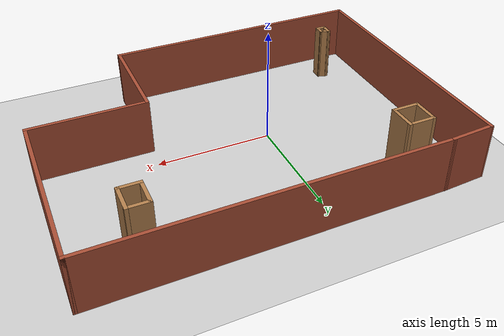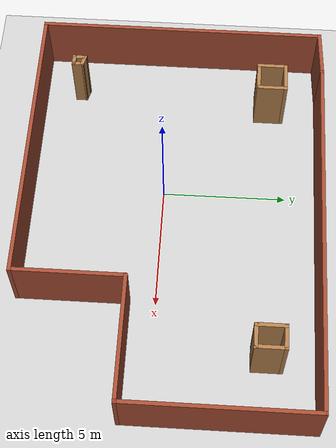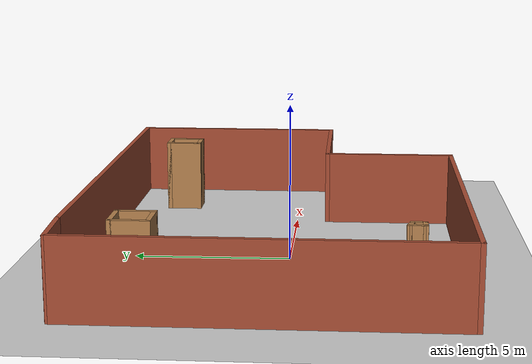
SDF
<sdf version="1.7">
 <world name="default">
  <light name="sun" type="directional">
   <pose>0 0 10 0 -0 0</pose>
   <diffuse>0.8 0.8 0.8 1</diffuse>
   <specular>0.2 0.2 0.2 1</specular>
   <attenuation>
    <range>1000</range>
    <constant>0.9</constant>
    <linear>0.01</linear>
    <quadratic>0.001</quadratic>
   </attenuation>
   <direction>-0.5 0.1 -0.9</direction>
   <spot><inner_angle>0</inner_angle><outer_angle>0</outer_angle><falloff>0</falloff></spot>
  </light>
  <model name="ground_plane">
   <static>1</static>
   <link name="link">
    <collision name="collision">
     <geometry><plane><normal>0 0 1</normal><size>100 100</size></plane></geometry>
     <surface><friction><ode><mu>100</mu><mu2>50</mu2></ode></friction></surface>
    </collision>
    <visual name="visual">
     <cast_shadows>0</cast_shadows>
     <geometry><plane><normal>0 0 1</normal><size>100 100</size></plane></geometry>
     <material>
      <script><uri>file://media/materials/scripts/gazebo.material</uri><name>Gazebo/Grey</name></script>
     </material>
    </visual>
   </link>
  </model>
  <gravity>0 0 -9.8</gravity>
  <magnetic_field>6e-06 2.3e-05 -4.2e-05</magnetic_field>
  <atmosphere type="adiabatic"/>
  <physics type="ode">
   <max_step_size>0.001</max_step_size>
   <real_time_factor>1</real_time_factor>
   <real_time_update_rate>1000</real_time_update_rate>
  </physics>
  <scene><ambient>0.4 0.4 0.4 1</ambient><background>0.7 0.7 0.7 1</background><shadows>1</shadows></scene>
  <spherical_coordinates>
   <surface_model>EARTH_WGS84</surface_model>
   <latitude_deg>0</latitude_deg>
   <longitude_deg>0</longitude_deg>
   <elevation>0</elevation>
   <heading_deg>0</heading_deg>
  </spherical_coordinates>
  <model name="tutorial_world">
   <pose>1.5769 0.43757 0 0 -0 0</pose>
   <link name="Wall_1">
    <collision name="Wall_1_Collision">
     <geometry><box><size>14.75 0.15 2.5</size></box></geometry>
     <pose>0 0 1.25 0 -0 0</pose>
    </collision>
    <visual name="Wall_1_Visual">
     <pose>0 0 1.25 0 -0 0</pose>
     <geometry><box><size>14.75 0.15 2.5</size></box></geometry>
     <material>
      <script><uri>file://media/materials/scripts/gazebo.material</uri><name>Gazebo/Bricks</name></script>
      <ambient>1 1 1 1</ambient>
     </material>
     <meta><layer>0</layer></meta>
    </visual>
    <pose>0.926969 5.84803 0 0 -0 0</pose>
   </link>
   <link name="Wall_11">
    <collision name="Wall_11_Collision">
     <geometry><box><size>0.5 0.15 2.5</size></box></geometry>
     <pose>0 0 1.25 0 -0 0</pose>
    </collision>
    <visual name="Wall_11_Visual">
     <pose>0 0 1.25 0 -0 0</pose>
     <geometry><box><size>0.5 0.15 2.5</size></box></geometry>
     <material>
      <script><uri>file://media/materials/scripts/gazebo.material</uri><name>Gazebo/Wood</name></script>
      <ambient>1 1 1 1</ambient>
     </material>
     <meta><layer>0</layer></meta>
    </visual>
    <pose>-6.37272 -4.46114 0 0 -0 0</pose>
   </link>
   <link name="Wall_12">
    <collision name="Wall_12_Collision">
     <geometry><box><size>0.5 0.15 2.5</size></box></geometry>
     <pose>0 0 1.25 0 -0 0</pose>
    </collision>
    <visual name="Wall_12_Visual">
     <pose>0 0 1.25 0 -0 0</pose>
     <geometry><box><size>0.5 0.15 2.5</size></box></geometry>
     <material>
      <script><uri>file://media/materials/scripts/gazebo.material</uri><name>Gazebo/Wood</name></script>
      <ambient>1 1 1 1</ambient>
     </material>
     <meta><layer>0</layer></meta>
    </visual>
    <pose>-6.19772 -4.28614 0 0 -0 1.5708</pose>
   </link>
   <link name="Wall_13">
    <collision name="Wall_13_Collision">
     <geometry><box><size>0.5 0.15 2.5</size></box></geometry>
     <pose>0 0 1.25 0 -0 0</pose>
    </collision>
    <visual name="Wall_13_Visual">
     <pose>0 0 1.25 0 -0 0</pose>
     <geometry><box><size>0.5 0.15 2.5</size></box></geometry>
     <material>
      <script><uri>file://media/materials/scripts/gazebo.material</uri><name>Gazebo/Wood</name></script>
      <ambient>1 1 1 1</ambient>
     </material>
     <meta><layer>0</layer></meta>
    </visual>
    <pose>-6.36676 -4.06585 0 0 -0 2.87979</pose>
   </link>
   <link name="Wall_14">
    <collision name="Wall_14_Collision">
     <geometry><box><size>0.590748 0.15 2.5</size></box></geometry>
     <pose>0 0 1.25 0 -0 0</pose>
    </collision>
    <visual name="Wall_14_Visual">
     <pose>0 0 1.25 0 -0 0</pose>
     <geometry><box><size>0.590748 0.15 2.5</size></box></geometry>
     <material>
      <script><uri>file://media/materials/scripts/gazebo.material</uri><name>Gazebo/Wood</name></script>
      <ambient>1 1 1 1</ambient>
     </material>
     <meta><layer>0</layer></meta>
    </visual>
    <pose>-6.54176 -4.24085 0 0 -0 -1.59786</pose>
   </link>
   <link name="Wall_16">
    <collision name="Wall_16_Collision">
     <geometry><box><size>1.25 0.15 2.5</size></box></geometry>
     <pose>0 0 1.25 0 -0 0</pose>
    </collision>
    <visual name="Wall_16_Visual">
     <pose>0 0 1.25 0 -0 0</pose>
     <geometry><box><size>1.25 0.15 2.5</size></box></geometry>
     <material>
      <script><uri>file://media/materials/scripts/gazebo.material</uri><name>Gazebo/Wood</name></script>
      <ambient>1 1 1 1</ambient>
     </material>
     <meta><layer>0</layer></meta>
    </visual>
    <pose>-6.54772 3.79885 0 0 -0 -1.5708</pose>
   </link>
   <link name="Wall_17">
    <collision name="Wall_17_Collision">
     <geometry><box><size>1.25 0.15 2.5</size></box></geometry>
     <pose>0 0 1.25 0 -0 0</pose>
    </collision>
    <visual name="Wall_17_Visual">
     <pose>0 0 1.25 0 -0 0</pose>
     <geometry><box><size>1.25 0.15 2.5</size></box></geometry>
     <material>
      <script><uri>file://media/materials/scripts/gazebo.material</uri><name>Gazebo/Wood</name></script>
      <ambient>1 1 1 1</ambient>
     </material>
     <meta><layer>0</layer></meta>
    </visual>
    <pose>-5.99772 3.24885 0 0 -0 0</pose>
   </link>
   <link name="Wall_18">
    <collision name="Wall_18_Collision">
     <geometry><box><size>1.25 0.15 2.5</size></box></geometry>
     <pose>0 0 1.25 0 -0 0</pose>
    </collision>
    <visual name="Wall_18_Visual">
     <pose>0 0 1.25 0 -0 0</pose>
     <geometry><box><size>1.25 0.15 2.5</size></box></geometry>
     <material>
      <script><uri>file://media/materials/scripts/gazebo.material</uri><name>Gazebo/Wood</name></script>
      <ambient>1 1 1 1</ambient>
     </material>
     <meta><layer>0</layer></meta>
    </visual>
    <pose>-5.44772 3.79885 0 0 -0 1.5708</pose>
   </link>
   <link name="Wall_19">
    <collision name="Wall_19_Collision">
     <geometry><box><size>1.25 0.15 2.5</size></box></geometry>
     <pose>0 0 1.25 0 -0 0</pose>
    </collision>
    <visual name="Wall_19_Visual">
     <pose>0 0 1.25 0 -0 0</pose>
     <geometry><box><size>1.25 0.15 2.5</size></box></geometry>
     <material>
      <script><uri>file://media/materials/scripts/gazebo.material</uri><name>Gazebo/Wood</name></script>
      <ambient>1 1 1 1</ambient>
     </material>
     <meta><layer>0</layer></meta>
    </visual>
    <pose>-5.99772 4.34884 0 0 -0 3.14159</pose>
   </link>
   <link name="Wall_2">
    <collision name="Wall_2_Collision">
     <geometry><box><size>7.5 0.15 2.5</size></box></geometry>
     <pose>0 0 1.25 0 -0 0</pose>
    </collision>
    <visual name="Wall_2_Visual">
     <pose>0 0 1.25 0 -0 0</pose>
     <geometry><box><size>7.5 0.15 2.5</size></box></geometry>
     <material>
      <script><uri>file://media/materials/scripts/gazebo.material</uri><name>Gazebo/Bricks</name></script>
      <ambient>1 1 1 1</ambient>
     </material>
     <meta><layer>0</layer></meta>
    </visual>
    <pose>8.22697 2.17303 0 0 -0 -1.5708</pose>
   </link>
   <link name="Wall_21">
    <collision name="Wall_21_Collision">
     <geometry><box><size>1.25 0.15 2.5</size></box></geometry>
     <pose>0 0 1.25 0 -0 0</pose>
    </collision>
    <visual name="Wall_21_Visual">
     <pose>0 0 1.25 0 -0 0</pose>
     <geometry><box><size>1.25 0.15 2.5</size></box></geometry>
     <material>
      <script><uri>file://media/materials/scripts/gazebo.material</uri><name>Gazebo/Wood</name></script>
      <ambient>1 1 1 1</ambient>
     </material>
     <meta><layer>0</layer></meta>
    </visual>
    <pose>5.05323 3.92094 0 0 -0 -1.5708</pose>
   </link>
   <link name="Wall_22">
    <collision name="Wall_22_Collision">
     <geometry><box><size>1 0.15 2.5</size></box></geometry>
     <pose>0 0 1.25 0 -0 0</pose>
    </collision>
    <visual name="Wall_22_Visual">
     <pose>0 0 1.25 0 -0 0</pose>
     <geometry><box><size>1 0.15 2.5</size></box></geometry>
     <material>
      <script><uri>file://media/materials/scripts/gazebo.material</uri><name>Gazebo/Wood</name></script>
      <ambient>1 1 1 1</ambient>
     </material>
     <meta><layer>0</layer></meta>
    </visual>
    <pose>5.47823 3.37094 0 0 -0 0</pose>
   </link>
   <link name="Wall_23">
    <collision name="Wall_23_Collision">
     <geometry><box><size>1.25 0.15 2.5</size></box></geometry>
     <pose>0 0 1.25 0 -0 0</pose>
    </collision>
    <visual name="Wall_23_Visual">
     <pose>0 0 1.25 0 -0 0</pose>
     <geometry><box><size>1.25 0.15 2.5</size></box></geometry>
     <material>
      <script><uri>file://media/materials/scripts/gazebo.material</uri><name>Gazebo/Wood</name></script>
      <ambient>1 1 1 1</ambient>
     </material>
     <meta><layer>0</layer></meta>
    </visual>
    <pose>5.90323 3.92094 0 0 -0 1.5708</pose>
   </link>
   <link name="Wall_24">
    <collision name="Wall_24_Collision">
     <geometry><box><size>1 0.15 2.5</size></box></geometry>
     <pose>0 0 1.25 0 -0 0</pose>
    </collision>
    <visual name="Wall_24_Visual">
     <pose>0 0 1.25 0 -0 0</pose>
     <geometry><box><size>1 0.15 2.5</size></box></geometry>
     <material>
      <script><uri>file://media/materials/scripts/gazebo.material</uri><name>Gazebo/Wood</name></script>
      <ambient>1 1 1 1</ambient>
     </material>
     <meta><layer>0</layer></meta>
    </visual>
    <pose>5.47823 4.47094 0 0 -0 3.14159</pose>
   </link>
   <link name="Wall_4">
    <collision name="Wall_4_Collision">
     <geometry><box><size>5 0.15 2.5</size></box></geometry>
     <pose>0 0 1.25 0 -0 0</pose>
    </collision>
    <visual name="Wall_4_Visual">
     <pose>0 0 1.25 0 -0 0</pose>
     <geometry><box><size>5 0.15 2.5</size></box></geometry>
     <material>
      <script><uri>file://media/materials/scripts/gazebo.material</uri><name>Gazebo/Bricks</name></script>
      <ambient>1 1 1 1</ambient>
     </material>
     <meta><layer>0</layer></meta>
    </visual>
    <pose>5.80197 -1.50197 0 0 -0 3.14159</pose>
   </link>
   <link name="Wall_5">
    <collision name="Wall_5_Collision">
     <geometry><box><size>4.5 0.15 2.5</size></box></geometry>
     <pose>0 0 1.25 0 -0 0</pose>
    </collision>
    <visual name="Wall_5_Visual">
     <pose>0 0 1.25 0 -0 0</pose>
     <geometry><box><size>4.5 0.15 2.5</size></box></geometry>
     <material>
      <script><uri>file://media/materials/scripts/gazebo.material</uri><name>Gazebo/Bricks</name></script>
      <ambient>1 1 1 1</ambient>
     </material>
     <meta><layer>0</layer></meta>
    </visual>
    <pose>3.37697 -3.67697 0 0 -0 -1.5708</pose>
   </link>
   <link name="Wall_6">
    <collision name="Wall_6_Collision">
     <geometry><box><size>11.75 0.15 2.5</size></box></geometry>
     <pose>0 0 1.25 0 -0 0</pose>
    </collision>
    <visual name="Wall_6_Visual">
     <pose>0 0 1.25 0 -0 0</pose>
     <geometry><box><size>11.75 0.15 2.5</size></box></geometry>
     <material>
      <script><uri>file://media/materials/scripts/gazebo.material</uri><name>Gazebo/Bricks</name></script>
      <ambient>1 1 1 1</ambient>
     </material>
     <meta><layer>0</layer></meta>
    </visual>
    <pose>-2.42303 -5.85197 0 0 -0 3.14159</pose>
   </link>
   <link name="Wall_8">
    <collision name="Wall_8_Collision">
     <geometry><box><size>11.75 0.15 2.5</size></box></geometry>
     <pose>0 0 1.25 0 -0 0</pose>
    </collision>
    <visual name="Wall_8_Visual">
     <pose>0 0 1.25 0 -0 0</pose>
     <geometry><box><size>11.75 0.15 2.5</size></box></geometry>
     <material>
      <script><uri>file://media/materials/scripts/gazebo.material</uri><name>Gazebo/Bricks</name></script>
      <ambient>1 1 1 1</ambient>
     </material>
     <meta><layer>0</layer></meta>
    </visual>
    <pose>-8.22303 -0.051969 0 0 -0 1.5708</pose>
   </link>
   <link name="Wall_9">
    <collision name="Wall_9_Collision">
     <geometry><box><size>2.0027 0.15 2.5</size></box></geometry>
     <pose>0 0 1.25 0 -0 0</pose>
    </collision>
    <visual name="Wall_9_Visual">
     <pose>0 0 1.25 0 -0 0</pose>
     <geometry><box><size>2.0027 0.15 2.5</size></box></geometry>
     <material>
      <script><uri>file://media/materials/scripts/gazebo.material</uri><name>Gazebo/Bricks</name></script>
      <ambient>1 1 1 1</ambient>
     </material>
     <meta><layer>0</layer></meta>
    </visual>
    <pose>-7.29803 5.79803 0 0 -0 0.054001</pose>
   </link>
   <static>1</static>
  </model>
 </world>
</sdf>
